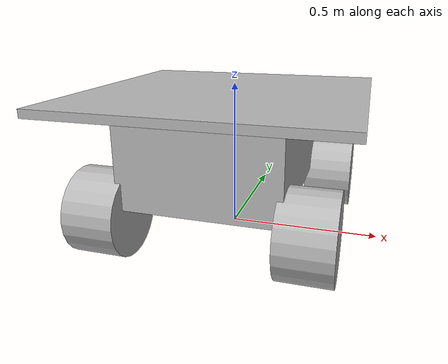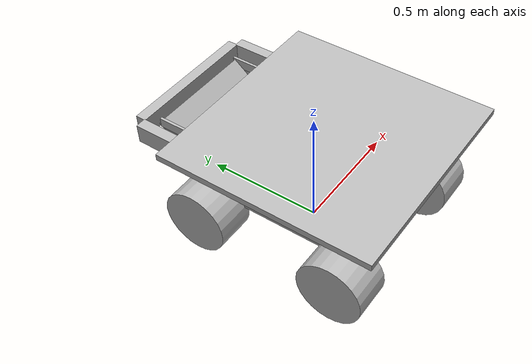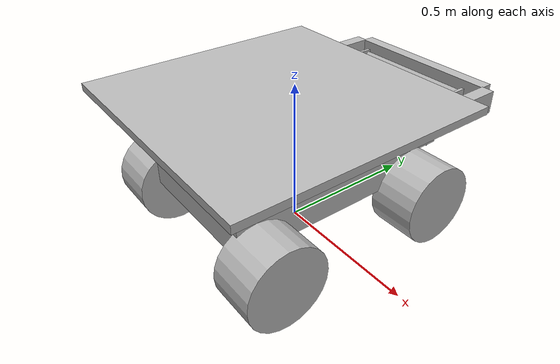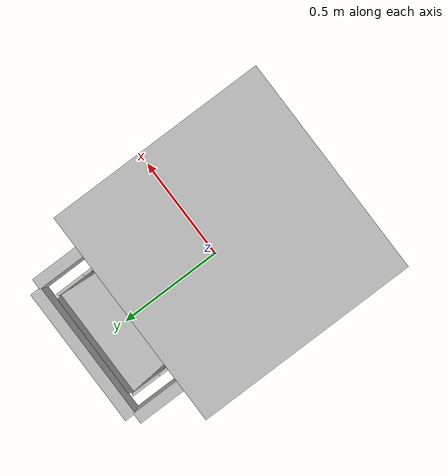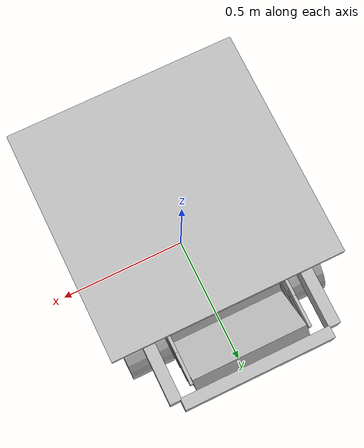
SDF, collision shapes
<?xml version="1.0" ?>
<sdf version="1.6">
    <model name="mars_rover">
        <static>true</static>
        <link name="link">
            <collision name="solar_panel_collision">
                <pose>0 -0.06945 0.47293 0 0 0</pose>
                <geometry>
                    <box>
                        <size>0.87974 0.8821 0.02602</size>
                    </box>
                </geometry>
            </collision>
            <collision name="chassis_collision">
                <pose>0 -0.05 0.31475 0 0 0</pose>
                <geometry>
                    <box>
                        <size>0.49522 0.67401 0.28915</size>
                    </box>
                </geometry>
            </collision>
            <collision name="rear_left_bumper_collision">
                <pose>0.30107 0.38350 0.38976 0 0 0</pose>
                <geometry>
                    <box>
                        <size>0.04442 0.388970 0.07918</size>
                    </box>
                </geometry>
            </collision>
            <collision name="rear_right_bumper_collision">
                <pose>-0.30107 0.38350 0.38976 0 0 0</pose>
                <geometry>
                    <box>
                        <size>0.04442 0.388970 0.07918</size>
                    </box>
                </geometry>
            </collision>
            <collision name="rear_bumper_collision">
                <pose>0 0.59414 0.38976 0 0 0</pose>
                <geometry>
                    <box>
                        <size>0.566560 0.04442 0.07918</size>
                    </box>
                </geometry>
            </collision>
            <collision name="bin_back_panel_collision">
                <pose>0 0.47 0.32114 0.69137 0 0</pose>
                <geometry>
                    <box>
                        <size>0.43774 0.212366009 0.05173</size>
                    </box>
                </geometry>
            </collision>
            <collision name="bin_left_panel_collision1">
                <pose>0.22615 0.328970 0.33193 0 0 0</pose>
                <geometry>
                    <box>
                        <size>0.01116 0.19338 0.16304</size>
                    </box>
                </geometry>
            </collision>
            <collision name="bin_left_panel_collision2">
                <pose>0.22615 0.471 0.393080 0 0 0</pose>
                <geometry>
                    <box>
                        <size>0.01116 0.15 0.04</size>
                    </box>
                </geometry>
            </collision>
            <collision name="bin_left_panel_collision3">
                <pose>0.22615 0.450 0.353080 0 0 0</pose>
                <geometry>
                    <box>
                        <size>0.01116 0.15 0.04</size>
                    </box>
                </geometry>
            </collision>
            <collision name="bin_left_panel_collision4">
                <pose>0.22615 0.39308 0.313080 0 0 0</pose>
                <geometry>
                    <box>
                        <size>0.01116 0.15 0.04</size>
                    </box>
                </geometry>
            </collision>
            <collision name="bin_right_panel_collision1">
                <pose>-0.22615 0.328970 0.33193 0 0 0</pose>
                <geometry>
                    <box>
                        <size>0.01116 0.19338 0.16304</size>
                    </box>
                </geometry>
            </collision>
            <collision name="bin_right_panel_collision2">
                <pose>-0.22615 0.471 0.393080 0 0 0</pose>
                <geometry>
                    <box>
                        <size>0.01116 0.15 0.04</size>
                    </box>
                </geometry>
            </collision>
            <collision name="bin_right_panel_collision3">
                <pose>-0.22615 0.450 0.353080 0 0 0</pose>
                <geometry>
                    <box>
                        <size>0.01116 0.15 0.04</size>
                    </box>
                </geometry>
            </collision>
            <collision name="bin_right_panel_collision4">
                <pose>-0.22615 0.39308 0.313080 0 0 0</pose>
                <geometry>
                    <box>
                        <size>0.01116 0.15 0.04</size>
                    </box>
                </geometry>
            </collision>
            <collision name="bin_front_panel_collision">
                <pose>0 0.300470 0.32114 2.26207 0 0</pose>
                <geometry>
                    <box>
                        <size>0.43774 0.212366009 0.05173</size>
                    </box>
                </geometry>
            </collision>
            <collision name="front_left_wheel_collision">
                <pose>0.31103 -0.32115 0.13580 1.5707 0 1.5707</pose>
                <geometry>
                    <cylinder>
                        <radius>0.1358</radius>
                        <length>0.1641</length>
                    </cylinder>
                </geometry>
            </collision>
            <collision name="front_right_wheel_collision">
                <pose>-0.31103 -0.32115 0.13580 1.5707 0 1.5707</pose>
                <geometry>
                    <cylinder>
                        <radius>0.1358</radius>
                        <length>0.1641</length>
                    </cylinder>
                </geometry>
            </collision>
            <collision name="rear_left_wheel_collision">
                <pose>0.31103 0.28049 0.13580 1.5707 0 1.5707</pose>
                <geometry>
                    <cylinder>
                        <radius>0.1358</radius>
                        <length>0.1641</length>
                    </cylinder>
                </geometry>
            </collision>
            <collision name="rear_right_wheel_collision">
                <pose>-0.31103 0.28049 0.13580 1.5707 0 1.5707</pose>
                <geometry>
                    <cylinder>
                        <radius>0.1358</radius>
                        <length>0.1641</length>
                    </cylinder>
                </geometry>
            </collision>
            <visual name="visual">
                <geometry>
                    <mesh>
                        <uri>https://fuel.gazebosim.org/1.0/openrobotics/models/mars rover/3/files/meshes/rover.dae</uri>
                    </mesh>
                </geometry>
            </visual>
        </link>
        <plugin name="ros2_diff_drive" filename="libgz_ros2_diff_drive.so">
            <ros>
                <namespace>/rover</namespace>
                <remapping>
                    <from>/cmd_vel</from>
                    <to>/rover/cmd_vel</to>
                </remapping>
            </ros>
            <left_joint>rear_left_wheel</left_joint>
            <right_joint>rear_right_wheel</right_joint>
            <wheel_separation>0.4</wheel_separation>
            <wheel_radius>0.1358</wheel_radius>
            <odom_frame>odom</odom_frame>
            <robot_base_frame>base_link</robot_base_frame>
        </plugin>
    </model>
</sdf>
